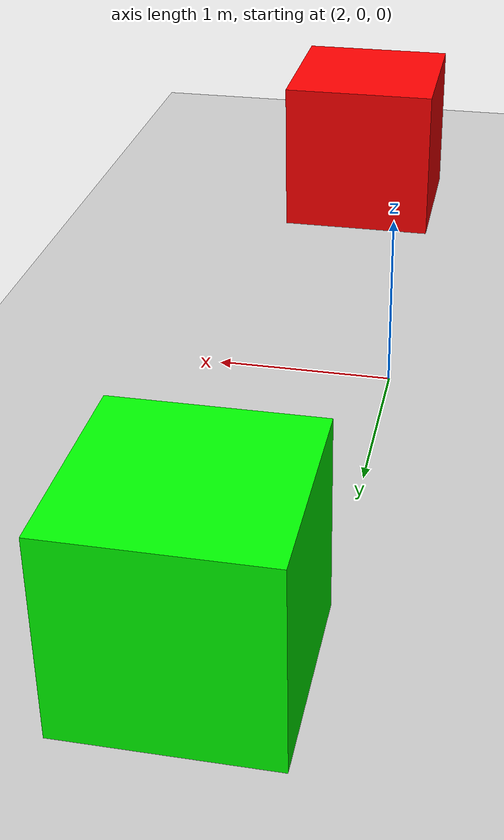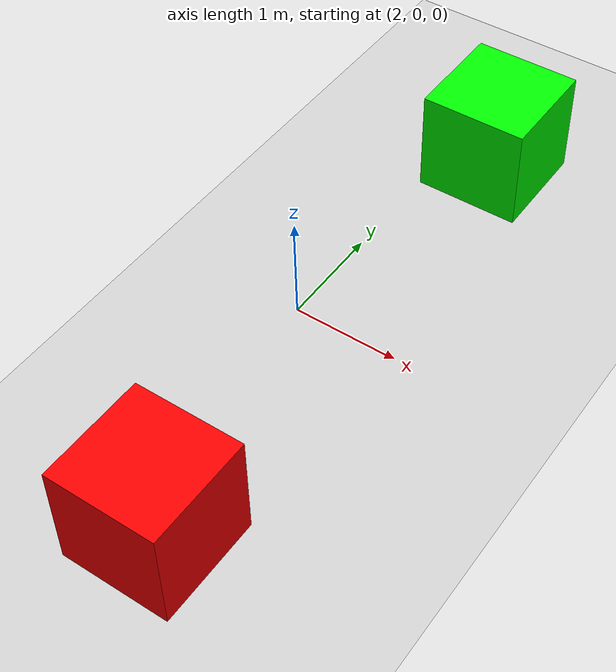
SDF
<?xml version="1.0" ?>
<sdf version="1.8">
    <world name="neobot_world">

        <light type="directional" name="sun">
            <cast_shadows>true</cast_shadows>
            <pose>0 0 10 0 0 0</pose>
            <diffuse>0.8 0.8 0.8 1</diffuse>
            <specular>0.2 0.2 0.2 1</specular>
            <attenuation>
                <range>1000</range>
                <constant>0.9</constant>
                <linear>0.01</linear>
                <quadratic>0.001</quadratic>
            </attenuation>
            <direction>-0.5 0.1 -0.9</direction>
        </light>

        <model name="ground_plane">
            <static>true</static>
            <link name="link">
                <collision name="collision">
                <geometry>
                    <plane>
                    <normal>0 0 1</normal>
                    </plane>
                </geometry>
                </collision>
                <visual name="visual">
                <geometry>
                    <plane>
                    <normal>0 0 1</normal>
                    <size>100 100</size>
                    </plane>
                </geometry>
                <material>
                    <ambient>0.8 0.8 0.8 1</ambient>
                    <diffuse>0.8 0.8 0.8 1</diffuse>
                    <specular>0.8 0.8 0.8 1</specular>
                </material>
                </visual>
            </link>
        </model>

        <model name="box1">
            <static>true</static>
            <link name="b1">
            <pose>2.5 -2.5 0.5 0 0 0</pose>
                <collision name="collisionb1">
                <geometry>
                    <box>
                        <size>1 1 1</size>
                    </box>
                </geometry>
                </collision>
                <visual name="visualb1">
                <geometry>
                    <box>
                        <size>1 1 1</size>
                    </box>
                </geometry>
                <material>
                    <ambient>1 0 0 1</ambient>
                    <diffuse>1 0 0 1</diffuse>
                    <specular>1 0 0 1</specular>
                </material>
                </visual>
            </link>
        </model>

        <model name="box2">
            <static>true</static>
            <link name="b2">
            <pose>2.5 2.5 0.5 0 0 0</pose>
                <collision name="collisionb2">
                <geometry>
                    <box>
                        <size>1 1 1</size>
                    </box>
                </geometry>
                </collision>
                <visual name="visualb2">
                <geometry>
                    <box>
                        <size>1 1 1</size>
                    </box>
                </geometry>
                <material>
                    <ambient>0 1 0 1</ambient>
                    <diffuse>0 1 0 1</diffuse>
                    <specular>0 1 0 1</specular>
                </material>
                </visual>
            </link>
        </model>

        <gui fullscreen='0'>
        <camera name='user_camera'>
            <pose>-3.90827 -4.65526 4.77216 0 0.623643 0.728194</pose>
            <view_controller>orbit</view_controller>
            <projection_type>perspective</projection_type>
        </camera>
        </gui>

    </world>
</sdf>
